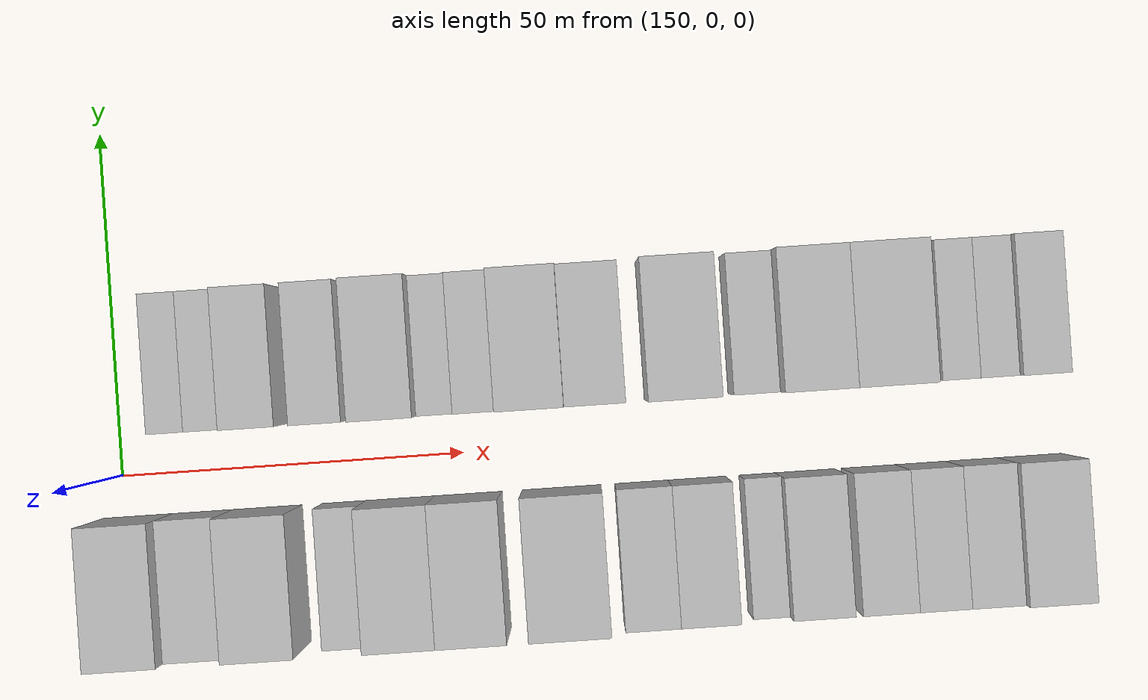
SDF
<sdf version="1.6">
 <world name="default">
  <model name="building_16">
   <static>1</static>
   <pose>158.3453 16.0000 0 0.000000 0.000000 1.570796</pose>
   <link name="link">
    <pose>0 0 6.00 0 0 0</pose>
    <collision name="collision"><geometry><box><size>20.0000 5.2759 12.0000</size></box></geometry></collision>
    <visual name="visual">
     <cast_shadows>0</cast_shadows>
     <geometry><box><size>20.0000 5.2759 12.0000</size></box></geometry>
     <material>
      <script>
       <uri>model://HANNAS_wall/materials/scripts</uri>
       <uri>model://HANNAS_wall/materials/textures</uri>
       <name>vrc/HANNAS_wall</name>
      </script>
     </material>
    </visual>
   </link>
  </model>
  <model name="building_17">
   <static>1</static>
   <pose>163.8583 16.0000 0 0.000000 0.000000 1.570796</pose>
   <link name="link">
    <pose>0 0 6.00 0 0 0</pose>
    <collision name="collision"><geometry><box><size>20.0000 5.7501 12.0000</size></box></geometry></collision>
    <visual name="visual">
     <cast_shadows>0</cast_shadows>
     <geometry><box><size>20.0000 5.7501 12.0000</size></box></geometry>
     <material>
      <script>
       <uri>model://HANNAS_wall/materials/scripts</uri>
       <uri>model://HANNAS_wall/materials/textures</uri>
       <name>vrc/HANNAS_wall</name>
      </script>
     </material>
    </visual>
   </link>
  </model>
  <model name="building_18">
   <static>1</static>
   <pose>170.6636 16.0000 0 0.000000 0.000000 1.570796</pose>
   <link name="link">
    <pose>0 0 9.00 0 0 0</pose>
    <collision name="collision"><geometry><box><size>20.0000 7.8605 18.0000</size></box></geometry></collision>
    <visual name="visual">
     <cast_shadows>0</cast_shadows>
     <geometry><box><size>20.0000 7.8605 18.0000</size></box></geometry>
     <material>
      <script>
       <uri>model://HANNAS_wall/materials/scripts</uri>
       <uri>model://HANNAS_wall/materials/textures</uri>
       <name>vrc/HANNAS_wall</name>
      </script>
     </material>
    </visual>
   </link>
  </model>
  <model name="building_19">
   <static>1</static>
   <pose>180.2828 16.0000 0 0.000000 0.000000 1.570796</pose>
   <link name="link">
    <pose>0 0 9.00 0 0 0</pose>
    <collision name="collision"><geometry><box><size>20.0000 7.3778 18.0000</size></box></geometry></collision>
    <visual name="visual">
     <cast_shadows>0</cast_shadows>
     <geometry><box><size>20.0000 7.3778 18.0000</size></box></geometry>
     <material>
      <script>
       <uri>model://HANNAS_wall/materials/scripts</uri>
       <uri>model://HANNAS_wall/materials/textures</uri>
       <name>vrc/HANNAS_wall</name>
      </script>
     </material>
    </visual>
   </link>
  </model>
  <model name="building_20">
   <static>1</static>
   <pose>189.5347 16.0000 0 0.000000 0.000000 1.570796</pose>
   <link name="link">
    <pose>0 0 10.50 0 0 0</pose>
    <collision name="collision"><geometry><box><size>20.0000 9.1259 21.0000</size></box></geometry></collision>
    <visual name="visual">
     <cast_shadows>0</cast_shadows>
     <geometry><box><size>20.0000 9.1259 21.0000</size></box></geometry>
     <material>
      <script>
       <uri>model://HANNAS_wall/materials/scripts</uri>
       <uri>model://HANNAS_wall/materials/textures</uri>
       <name>vrc/HANNAS_wall</name>
      </script>
     </material>
    </visual>
   </link>
  </model>
  <model name="building_21">
   <static>1</static>
   <pose>196.7513 16.0000 0 0.000000 0.000000 1.570796</pose>
   <link name="link">
    <pose>0 0 6.00 0 0 0</pose>
    <collision name="collision"><geometry><box><size>20.0000 5.3074 12.0000</size></box></geometry></collision>
    <visual name="visual">
     <cast_shadows>0</cast_shadows>
     <geometry><box><size>20.0000 5.3074 12.0000</size></box></geometry>
     <material>
      <script>
       <uri>model://HANNAS_wall/materials/scripts</uri>
       <uri>model://HANNAS_wall/materials/textures</uri>
       <name>vrc/HANNAS_wall</name>
      </script>
     </material>
    </visual>
   </link>
  </model>
  <model name="building_22">
   <static>1</static>
   <pose>202.4289 16.0000 0 0.000000 0.000000 1.570796</pose>
   <link name="link">
    <pose>0 0 7.50 0 0 0</pose>
    <collision name="collision"><geometry><box><size>20.0000 6.0478 15.0000</size></box></geometry></collision>
    <visual name="visual">
     <cast_shadows>0</cast_shadows>
     <geometry><box><size>20.0000 6.0478 15.0000</size></box></geometry>
     <material>
      <script>
       <uri>model://HANNAS_wall/materials/scripts</uri>
       <uri>model://HANNAS_wall/materials/textures</uri>
       <name>vrc/HANNAS_wall</name>
      </script>
     </material>
    </visual>
   </link>
  </model>
  <model name="building_23">
   <static>1</static>
   <pose>210.3044 16.0000 0 0.000000 0.000000 1.570796</pose>
   <link name="link">
    <pose>0 0 10.50 0 0 0</pose>
    <collision name="collision"><geometry><box><size>20.0000 9.7033 21.0000</size></box></geometry></collision>
    <visual name="visual">
     <cast_shadows>0</cast_shadows>
     <geometry><box><size>20.0000 9.7033 21.0000</size></box></geometry>
     <material>
      <script>
       <uri>model://HANNAS_wall/materials/scripts</uri>
       <uri>model://HANNAS_wall/materials/textures</uri>
       <name>vrc/HANNAS_wall</name>
      </script>
     </material>
    </visual>
   </link>
  </model>
  <model name="building_24">
   <static>1</static>
   <pose>219.4994 16.0000 0 0.000000 0.000000 1.570796</pose>
   <link name="link">
    <pose>0 0 9.00 0 0 0</pose>
    <collision name="collision"><geometry><box><size>20.0000 8.6868 18.0000</size></box></geometry></collision>
    <visual name="visual">
     <cast_shadows>0</cast_shadows>
     <geometry><box><size>20.0000 8.6868 18.0000</size></box></geometry>
     <material>
      <script>
       <uri>model://HANNAS_wall/materials/scripts</uri>
       <uri>model://HANNAS_wall/materials/textures</uri>
       <name>vrc/HANNAS_wall</name>
      </script>
     </material>
    </visual>
   </link>
  </model>
  <model name="building_25">
   <static>1</static>
   <pose>231.9892 16.0000 0 0.000000 0.000000 1.570796</pose>
   <link name="link">
    <pose>0 0 12.00 0 0 0</pose>
    <collision name="collision"><geometry><box><size>20.0000 10.2928 24.0000</size></box></geometry></collision>
    <visual name="visual">
     <cast_shadows>0</cast_shadows>
     <geometry><box><size>20.0000 10.2928 24.0000</size></box></geometry>
     <material>
      <script>
       <uri>model://HANNAS_wall/materials/scripts</uri>
       <uri>model://HANNAS_wall/materials/textures</uri>
       <name>vrc/HANNAS_wall</name>
      </script>
     </material>
    </visual>
   </link>
  </model>
  <model name="building_26">
   <static>1</static>
   <pose>242.4073 16.0000 0 0.000000 0.000000 1.570796</pose>
   <link name="link">
    <pose>0 0 7.50 0 0 0</pose>
    <collision name="collision"><geometry><box><size>20.0000 6.5432 15.0000</size></box></geometry></collision>
    <visual name="visual">
     <cast_shadows>0</cast_shadows>
     <geometry><box><size>20.0000 6.5432 15.0000</size></box></geometry>
     <material>
      <script>
       <uri>model://HANNAS_wall/materials/scripts</uri>
       <uri>model://HANNAS_wall/materials/textures</uri>
       <name>vrc/HANNAS_wall</name>
      </script>
     </material>
    </visual>
   </link>
  </model>
  <model name="building_27">
   <static>1</static>
   <pose>250.7793 16.0000 0 0.000000 0.000000 1.570796</pose>
   <link name="link">
    <pose>0 0 12.00 0 0 0</pose>
    <collision name="collision"><geometry><box><size>20.0000 10.2008 24.0000</size></box></geometry></collision>
    <visual name="visual">
     <cast_shadows>0</cast_shadows>
     <geometry><box><size>20.0000 10.2008 24.0000</size></box></geometry>
     <material>
      <script>
       <uri>model://HANNAS_wall/materials/scripts</uri>
       <uri>model://HANNAS_wall/materials/textures</uri>
       <name>vrc/HANNAS_wall</name>
      </script>
     </material>
    </visual>
   </link>
  </model>
  <model name="building_28">
   <static>1</static>
   <pose>261.4394 16.0000 0 0.000000 0.000000 1.570796</pose>
   <link name="link">
    <pose>0 0 12.00 0 0 0</pose>
    <collision name="collision"><geometry><box><size>20.0000 11.1194 24.0000</size></box></geometry></collision>
    <visual name="visual">
     <cast_shadows>0</cast_shadows>
     <geometry><box><size>20.0000 11.1194 24.0000</size></box></geometry>
     <material>
      <script>
       <uri>model://HANNAS_wall/materials/scripts</uri>
       <uri>model://HANNAS_wall/materials/textures</uri>
       <name>vrc/HANNAS_wall</name>
      </script>
     </material>
    </visual>
   </link>
  </model>
  <model name="building_29">
   <static>1</static>
   <pose>271.7174 16.0000 0 0.000000 0.000000 1.570796</pose>
   <link name="link">
    <pose>0 0 6.00 0 0 0</pose>
    <collision name="collision"><geometry><box><size>20.0000 5.4367 12.0000</size></box></geometry></collision>
    <visual name="visual">
     <cast_shadows>0</cast_shadows>
     <geometry><box><size>20.0000 5.4367 12.0000</size></box></geometry>
     <material>
      <script>
       <uri>model://HANNAS_wall/materials/scripts</uri>
       <uri>model://HANNAS_wall/materials/textures</uri>
       <name>vrc/HANNAS_wall</name>
      </script>
     </material>
    </visual>
   </link>
  </model>
  <model name="building_30">
   <static>1</static>
   <pose>277.2070 16.0000 0 0.000000 0.000000 1.570796</pose>
   <link name="link">
    <pose>0 0 6.00 0 0 0</pose>
    <collision name="collision"><geometry><box><size>20.0000 5.5424 12.0000</size></box></geometry></collision>
    <visual name="visual">
     <cast_shadows>0</cast_shadows>
     <geometry><box><size>20.0000 5.5424 12.0000</size></box></geometry>
     <material>
      <script>
       <uri>model://HANNAS_wall/materials/scripts</uri>
       <uri>model://HANNAS_wall/materials/textures</uri>
       <name>vrc/HANNAS_wall</name>
      </script>
     </material>
    </visual>
   </link>
  </model>
  <model name="building_31">
   <static>1</static>
   <pose>283.4098 16.0000 0 0.000000 0.000000 1.570796</pose>
   <link name="link">
    <pose>0 0 7.50 0 0 0</pose>
    <collision name="collision"><geometry><box><size>20.0000 6.8633 15.0000</size></box></geometry></collision>
    <visual name="visual">
     <cast_shadows>0</cast_shadows>
     <geometry><box><size>20.0000 6.8633 15.0000</size></box></geometry>
     <material>
      <script>
       <uri>model://HANNAS_wall/materials/scripts</uri>
       <uri>model://HANNAS_wall/materials/textures</uri>
       <name>vrc/HANNAS_wall</name>
      </script>
     </material>
    </visual>
   </link>
  </model>
  <model name="building_46">
   <static>1</static>
   <pose>151.8254 -16.0000 0 0.000000 0.000000 1.570796</pose>
   <link name="link">
    <pose>0 0 12.00 0 0 0</pose>
    <collision name="collision"><geometry><box><size>20.0000 10.1878 24.0000</size></box></geometry></collision>
    <visual name="visual">
     <cast_shadows>0</cast_shadows>
     <geometry><box><size>20.0000 10.1878 24.0000</size></box></geometry>
     <material>
      <script>
       <uri>model://HANNAS_wall/materials/scripts</uri>
       <uri>model://HANNAS_wall/materials/textures</uri>
       <name>vrc/HANNAS_wall</name>
      </script>
     </material>
    </visual>
   </link>
  </model>
  <model name="building_47">
   <static>1</static>
   <pose>161.3143 -16.0000 0 0.000000 0.000000 1.570796</pose>
   <link name="link">
    <pose>0 0 9.00 0 0 0</pose>
    <collision name="collision"><geometry><box><size>20.0000 8.7901 18.0000</size></box></geometry></collision>
    <visual name="visual">
     <cast_shadows>0</cast_shadows>
     <geometry><box><size>20.0000 8.7901 18.0000</size></box></geometry>
     <material>
      <script>
       <uri>model://HANNAS_wall/materials/scripts</uri>
       <uri>model://HANNAS_wall/materials/textures</uri>
       <name>vrc/HANNAS_wall</name>
      </script>
     </material>
    </visual>
   </link>
  </model>
  <model name="building_48">
   <static>1</static>
   <pose>170.7829 -16.0000 0 0.000000 0.000000 1.570796</pose>
   <link name="link">
    <pose>0 0 12.00 0 0 0</pose>
    <collision name="collision"><geometry><box><size>20.0000 10.1469 24.0000</size></box></geometry></collision>
    <visual name="visual">
     <cast_shadows>0</cast_shadows>
     <geometry><box><size>20.0000 10.1469 24.0000</size></box></geometry>
     <material>
      <script>
       <uri>model://HANNAS_wall/materials/scripts</uri>
       <uri>model://HANNAS_wall/materials/textures</uri>
       <name>vrc/HANNAS_wall</name>
      </script>
     </material>
    </visual>
   </link>
  </model>
  <model name="building_49">
   <static>1</static>
   <pose>182.0384 -16.0000 0 0.000000 0.000000 1.570796</pose>
   <link name="link">
    <pose>0 0 7.50 0 0 0</pose>
    <collision name="collision"><geometry><box><size>20.0000 6.3642 15.0000</size></box></geometry></collision>
    <visual name="visual">
     <cast_shadows>0</cast_shadows>
     <geometry><box><size>20.0000 6.3642 15.0000</size></box></geometry>
     <material>
      <script>
       <uri>model://HANNAS_wall/materials/scripts</uri>
       <uri>model://HANNAS_wall/materials/textures</uri>
       <name>vrc/HANNAS_wall</name>
      </script>
     </material>
    </visual>
   </link>
  </model>
  <model name="building_50">
   <static>1</static>
   <pose>190.2656 -16.0000 0 0.000000 0.000000 1.570796</pose>
   <link name="link">
    <pose>0 0 12.00 0 0 0</pose>
    <collision name="collision"><geometry><box><size>20.0000 10.0901 24.0000</size></box></geometry></collision>
    <visual name="visual">
     <cast_shadows>0</cast_shadows>
     <geometry><box><size>20.0000 10.0901 24.0000</size></box></geometry>
     <material>
      <script>
       <uri>model://HANNAS_wall/materials/scripts</uri>
       <uri>model://HANNAS_wall/materials/textures</uri>
       <name>vrc/HANNAS_wall</name>
      </script>
     </material>
    </visual>
   </link>
  </model>
  <model name="building_51">
   <static>1</static>
   <pose>200.2509 -16.0000 0 0.000000 0.000000 1.570796</pose>
   <link name="link">
    <pose>0 0 12.00 0 0 0</pose>
    <collision name="collision"><geometry><box><size>20.0000 9.8806 24.0000</size></box></geometry></collision>
    <visual name="visual">
     <cast_shadows>0</cast_shadows>
     <geometry><box><size>20.0000 9.8806 24.0000</size></box></geometry>
     <material>
      <script>
       <uri>model://HANNAS_wall/materials/scripts</uri>
       <uri>model://HANNAS_wall/materials/textures</uri>
       <name>vrc/HANNAS_wall</name>
      </script>
     </material>
    </visual>
   </link>
  </model>
  <model name="building_52">
   <static>1</static>
   <pose>213.9284 -16.0000 0 0.000000 0.000000 1.570796</pose>
   <link name="link">
    <pose>0 0 12.00 0 0 0</pose>
    <collision name="collision"><geometry><box><size>20.0000 11.4744 24.0000</size></box></geometry></collision>
    <visual name="visual">
     <cast_shadows>0</cast_shadows>
     <geometry><box><size>20.0000 11.4744 24.0000</size></box></geometry>
     <material>
      <script>
       <uri>model://HANNAS_wall/materials/scripts</uri>
       <uri>model://HANNAS_wall/materials/textures</uri>
       <name>vrc/HANNAS_wall</name>
      </script>
     </material>
    </visual>
   </link>
  </model>
  <model name="building_53">
   <static>1</static>
   <pose>225.5654 -16.0000 0 0.000000 0.000000 1.570796</pose>
   <link name="link">
    <pose>0 0 9.00 0 0 0</pose>
    <collision name="collision"><geometry><box><size>20.0000 7.7996 18.0000</size></box></geometry></collision>
    <visual name="visual">
     <cast_shadows>0</cast_shadows>
     <geometry><box><size>20.0000 7.7996 18.0000</size></box></geometry>
     <material>
      <script>
       <uri>model://HANNAS_wall/materials/scripts</uri>
       <uri>model://HANNAS_wall/materials/textures</uri>
       <name>vrc/HANNAS_wall</name>
      </script>
     </material>
    </visual>
   </link>
  </model>
  <model name="building_54">
   <static>1</static>
   <pose>233.6869 -16.0000 0 0.000000 0.000000 1.570796</pose>
   <link name="link">
    <pose>0 0 9.00 0 0 0</pose>
    <collision name="collision"><geometry><box><size>20.0000 8.4433 18.0000</size></box></geometry></collision>
    <visual name="visual">
     <cast_shadows>0</cast_shadows>
     <geometry><box><size>20.0000 8.4433 18.0000</size></box></geometry>
     <material>
      <script>
       <uri>model://HANNAS_wall/materials/scripts</uri>
       <uri>model://HANNAS_wall/materials/textures</uri>
       <name>vrc/HANNAS_wall</name>
      </script>
     </material>
    </visual>
   </link>
  </model>
  <model name="building_55">
   <static>1</static>
   <pose>242.5419 -16.0000 0 0.000000 0.000000 1.570796</pose>
   <link name="link">
    <pose>0 0 6.00 0 0 0</pose>
    <collision name="collision"><geometry><box><size>20.0000 5.2669 12.0000</size></box></geometry></collision>
    <visual name="visual">
     <cast_shadows>0</cast_shadows>
     <geometry><box><size>20.0000 5.2669 12.0000</size></box></geometry>
     <material>
      <script>
       <uri>model://HANNAS_wall/materials/scripts</uri>
       <uri>model://HANNAS_wall/materials/textures</uri>
       <name>vrc/HANNAS_wall</name>
      </script>
     </material>
    </visual>
   </link>
  </model>
  <model name="building_56">
   <static>1</static>
   <pose>249.5350 -16.0000 0 0.000000 0.000000 1.570796</pose>
   <link name="link">
    <pose>0 0 9.00 0 0 0</pose>
    <collision name="collision"><geometry><box><size>20.0000 8.7193 18.0000</size></box></geometry></collision>
    <visual name="visual">
     <cast_shadows>0</cast_shadows>
     <geometry><box><size>20.0000 8.7193 18.0000</size></box></geometry>
     <material>
      <script>
       <uri>model://HANNAS_wall/materials/scripts</uri>
       <uri>model://HANNAS_wall/materials/textures</uri>
       <name>vrc/HANNAS_wall</name>
      </script>
     </material>
    </visual>
   </link>
  </model>
  <model name="building_57">
   <static>1</static>
   <pose>258.8688 -16.0000 0 0.000000 0.000000 1.570796</pose>
   <link name="link">
    <pose>0 0 9.00 0 0 0</pose>
    <collision name="collision"><geometry><box><size>20.0000 7.9484 18.0000</size></box></geometry></collision>
    <visual name="visual">
     <cast_shadows>0</cast_shadows>
     <geometry><box><size>20.0000 7.9484 18.0000</size></box></geometry>
     <material>
      <script>
       <uri>model://HANNAS_wall/materials/scripts</uri>
       <uri>model://HANNAS_wall/materials/textures</uri>
       <name>vrc/HANNAS_wall</name>
      </script>
     </material>
    </visual>
   </link>
  </model>
  <model name="building_58">
   <static>1</static>
   <pose>266.5032 -16.0000 0 0.000000 0.000000 1.570796</pose>
   <link name="link">
    <pose>0 0 9.00 0 0 0</pose>
    <collision name="collision"><geometry><box><size>20.0000 7.3204 18.0000</size></box></geometry></collision>
    <visual name="visual">
     <cast_shadows>0</cast_shadows>
     <geometry><box><size>20.0000 7.3204 18.0000</size></box></geometry>
     <material>
      <script>
       <uri>model://HANNAS_wall/materials/scripts</uri>
       <uri>model://HANNAS_wall/materials/textures</uri>
       <name>vrc/HANNAS_wall</name>
      </script>
     </material>
    </visual>
   </link>
  </model>
  <model name="building_59">
   <static>1</static>
   <pose>273.9267 -16.0000 0 0.000000 0.000000 1.570796</pose>
   <link name="link">
    <pose>0 0 9.00 0 0 0</pose>
    <collision name="collision"><geometry><box><size>20.0000 7.5265 18.0000</size></box></geometry></collision>
    <visual name="visual">
     <cast_shadows>0</cast_shadows>
     <geometry><box><size>20.0000 7.5265 18.0000</size></box></geometry>
     <material>
      <script>
       <uri>model://HANNAS_wall/materials/scripts</uri>
       <uri>model://HANNAS_wall/materials/textures</uri>
       <name>vrc/HANNAS_wall</name>
      </script>
     </material>
    </visual>
   </link>
  </model>
  <model name="building_60">
   <static>1</static>
   <pose>282.4347 -16.0000 0 0.000000 0.000000 1.570796</pose>
   <link name="link">
    <pose>0 0 10.50 0 0 0</pose>
    <collision name="collision"><geometry><box><size>20.0000 9.4894 21.0000</size></box></geometry></collision>
    <visual name="visual">
     <cast_shadows>0</cast_shadows>
     <geometry><box><size>20.0000 9.4894 21.0000</size></box></geometry>
     <material>
      <script>
       <uri>model://HANNAS_wall/materials/scripts</uri>
       <uri>model://HANNAS_wall/materials/textures</uri>
       <name>vrc/HANNAS_wall</name>
      </script>
     </material>
    </visual>
   </link>
  </model>
 </world>
</sdf>
